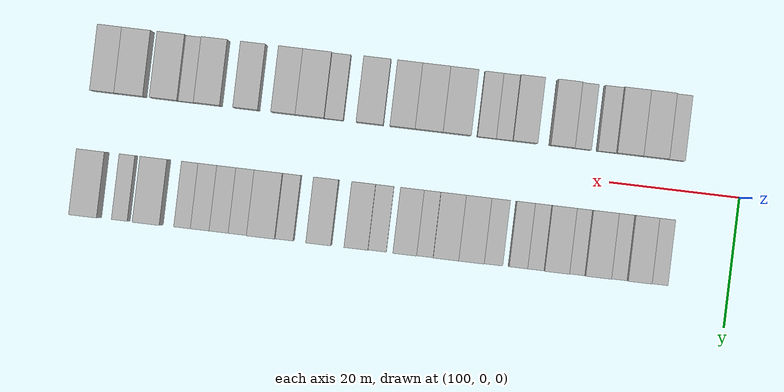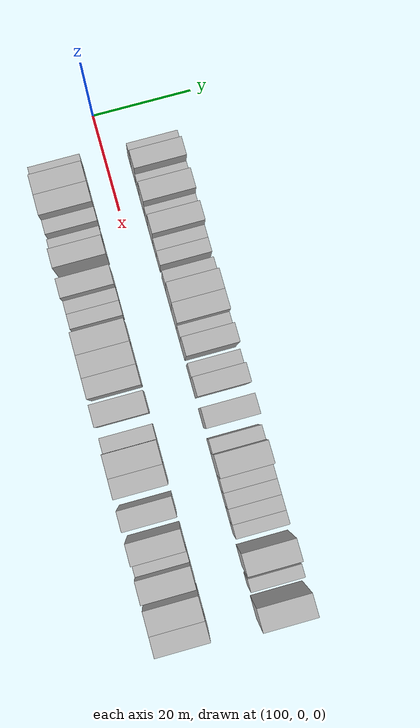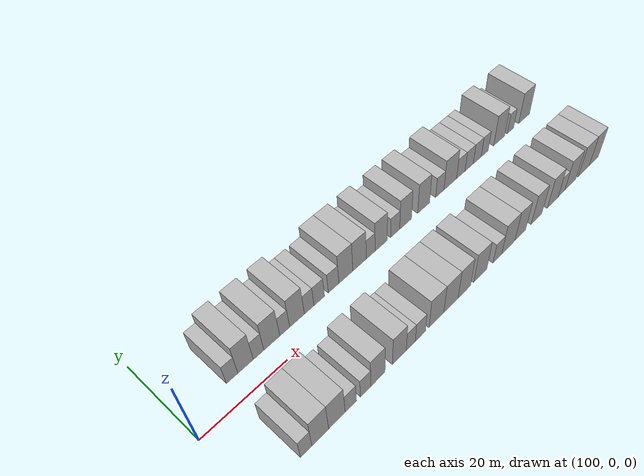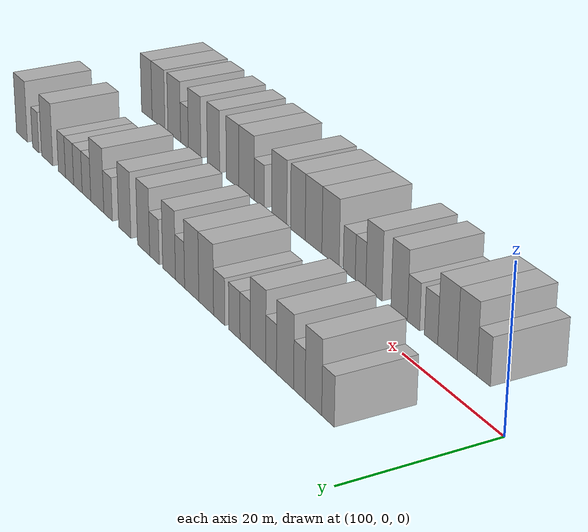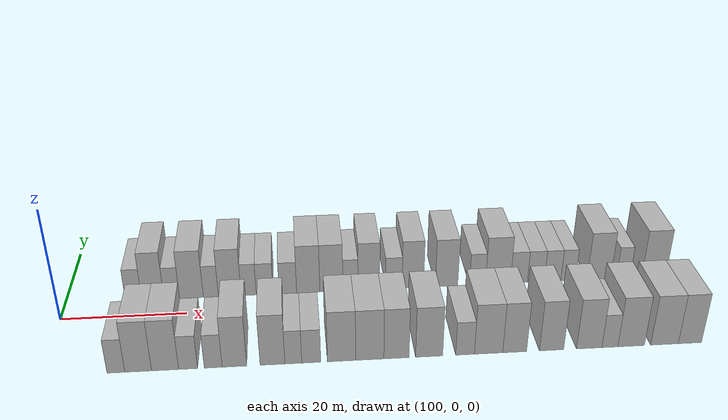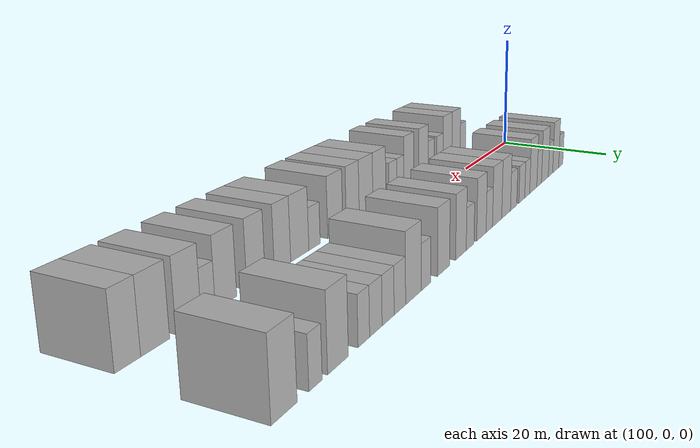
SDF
<sdf version="1.6">
 <world name="default">
  <model name="building_24">
   <static>1</static>
   <pose>111.0320 9.5000 0 0.000000 0.000000 1.570796</pose>
   <link name="link">
    <pose>0 0 3.00 0 0 0</pose>
    <collision name="collision"><geometry><box><size>10.0000 2.6387 6.0000</size></box></geometry></collision>
    <visual name="visual">
     <cast_shadows>0</cast_shadows>
     <geometry><box><size>10.0000 2.6387 6.0000</size></box></geometry>
     <material>
      <script>
       <uri>model://HANNAS_wall/materials/scripts</uri>
       <uri>model://HANNAS_wall/materials/textures</uri>
       <name>vrc/HANNAS_wall</name>
      </script>
     </material>
    </visual>
   </link>
  </model>
  <model name="building_25">
   <static>1</static>
   <pose>114.1559 9.5000 0 0.000000 0.000000 1.570796</pose>
   <link name="link">
    <pose>0 0 4.50 0 0 0</pose>
    <collision name="collision"><geometry><box><size>10.0000 3.6091 9.0000</size></box></geometry></collision>
    <visual name="visual">
     <cast_shadows>0</cast_shadows>
     <geometry><box><size>10.0000 3.6091 9.0000</size></box></geometry>
     <material>
      <script>
       <uri>model://HANNAS_wall/materials/scripts</uri>
       <uri>model://HANNAS_wall/materials/textures</uri>
       <name>vrc/HANNAS_wall</name>
      </script>
     </material>
    </visual>
   </link>
  </model>
  <model name="building_26">
   <static>1</static>
   <pose>117.2297 9.5000 0 0.000000 0.000000 1.570796</pose>
   <link name="link">
    <pose>0 0 3.00 0 0 0</pose>
    <collision name="collision"><geometry><box><size>10.0000 2.5383 6.0000</size></box></geometry></collision>
    <visual name="visual">
     <cast_shadows>0</cast_shadows>
     <geometry><box><size>10.0000 2.5383 6.0000</size></box></geometry>
     <material>
      <script>
       <uri>model://HANNAS_wall/materials/scripts</uri>
       <uri>model://HANNAS_wall/materials/textures</uri>
       <name>vrc/HANNAS_wall</name>
      </script>
     </material>
    </visual>
   </link>
  </model>
  <model name="building_27">
   <static>1</static>
   <pose>120.4501 9.5000 0 0.000000 0.000000 1.570796</pose>
   <link name="link">
    <pose>0 0 4.50 0 0 0</pose>
    <collision name="collision"><geometry><box><size>10.0000 3.9025 9.0000</size></box></geometry></collision>
    <visual name="visual">
     <cast_shadows>0</cast_shadows>
     <geometry><box><size>10.0000 3.9025 9.0000</size></box></geometry>
     <material>
      <script>
       <uri>model://HANNAS_wall/materials/scripts</uri>
       <uri>model://HANNAS_wall/materials/textures</uri>
       <name>vrc/HANNAS_wall</name>
      </script>
     </material>
    </visual>
   </link>
  </model>
  <model name="building_28">
   <static>1</static>
   <pose>123.6335 9.5000 0 0.000000 0.000000 1.570796</pose>
   <link name="link">
    <pose>0 0 3.00 0 0 0</pose>
    <collision name="collision"><geometry><box><size>10.0000 2.4644 6.0000</size></box></geometry></collision>
    <visual name="visual">
     <cast_shadows>0</cast_shadows>
     <geometry><box><size>10.0000 2.4644 6.0000</size></box></geometry>
     <material>
      <script>
       <uri>model://HANNAS_wall/materials/scripts</uri>
       <uri>model://HANNAS_wall/materials/textures</uri>
       <name>vrc/HANNAS_wall</name>
      </script>
     </material>
    </visual>
   </link>
  </model>
  <model name="building_29">
   <static>1</static>
   <pose>126.7385 9.5000 0 0.000000 0.000000 1.570796</pose>
   <link name="link">
    <pose>0 0 4.50 0 0 0</pose>
    <collision name="collision"><geometry><box><size>10.0000 3.7456 9.0000</size></box></geometry></collision>
    <visual name="visual">
     <cast_shadows>0</cast_shadows>
     <geometry><box><size>10.0000 3.7456 9.0000</size></box></geometry>
     <material>
      <script>
       <uri>model://HANNAS_wall/materials/scripts</uri>
       <uri>model://HANNAS_wall/materials/textures</uri>
       <name>vrc/HANNAS_wall</name>
      </script>
     </material>
    </visual>
   </link>
  </model>
  <model name="building_30">
   <static>1</static>
   <pose>129.8564 9.5000 0 0.000000 0.000000 1.570796</pose>
   <link name="link">
    <pose>0 0 3.00 0 0 0</pose>
    <collision name="collision"><geometry><box><size>10.0000 2.4900 6.0000</size></box></geometry></collision>
    <visual name="visual">
     <cast_shadows>0</cast_shadows>
     <geometry><box><size>10.0000 2.4900 6.0000</size></box></geometry>
     <material>
      <script>
       <uri>model://HANNAS_wall/materials/scripts</uri>
       <uri>model://HANNAS_wall/materials/textures</uri>
       <name>vrc/HANNAS_wall</name>
      </script>
     </material>
    </visual>
   </link>
  </model>
  <model name="building_31">
   <static>1</static>
   <pose>132.5036 9.5000 0 0.000000 0.000000 1.570796</pose>
   <link name="link">
    <pose>0 0 3.00 0 0 0</pose>
    <collision name="collision"><geometry><box><size>10.0000 2.8044 6.0000</size></box></geometry></collision>
    <visual name="visual">
     <cast_shadows>0</cast_shadows>
     <geometry><box><size>10.0000 2.8044 6.0000</size></box></geometry>
     <material>
      <script>
       <uri>model://HANNAS_wall/materials/scripts</uri>
       <uri>model://HANNAS_wall/materials/textures</uri>
       <name>vrc/HANNAS_wall</name>
      </script>
     </material>
    </visual>
   </link>
  </model>
  <model name="building_32">
   <static>1</static>
   <pose>136.3526 9.5000 0 0.000000 0.000000 1.570796</pose>
   <link name="link">
    <pose>0 0 3.00 0 0 0</pose>
    <collision name="collision"><geometry><box><size>10.0000 2.8936 6.0000</size></box></geometry></collision>
    <visual name="visual">
     <cast_shadows>0</cast_shadows>
     <geometry><box><size>10.0000 2.8936 6.0000</size></box></geometry>
     <material>
      <script>
       <uri>model://HANNAS_wall/materials/scripts</uri>
       <uri>model://HANNAS_wall/materials/textures</uri>
       <name>vrc/HANNAS_wall</name>
      </script>
     </material>
    </visual>
   </link>
  </model>
  <model name="building_33">
   <static>1</static>
   <pose>139.7348 9.5000 0 0.000000 0.000000 1.570796</pose>
   <link name="link">
    <pose>0 0 4.50 0 0 0</pose>
    <collision name="collision"><geometry><box><size>10.0000 3.8708 9.0000</size></box></geometry></collision>
    <visual name="visual">
     <cast_shadows>0</cast_shadows>
     <geometry><box><size>10.0000 3.8708 9.0000</size></box></geometry>
     <material>
      <script>
       <uri>model://HANNAS_wall/materials/scripts</uri>
       <uri>model://HANNAS_wall/materials/textures</uri>
       <name>vrc/HANNAS_wall</name>
      </script>
     </material>
    </visual>
   </link>
  </model>
  <model name="building_34">
   <static>1</static>
   <pose>143.5963 9.5000 0 0.000000 0.000000 1.570796</pose>
   <link name="link">
    <pose>0 0 4.50 0 0 0</pose>
    <collision name="collision"><geometry><box><size>10.0000 3.8521 9.0000</size></box></geometry></collision>
    <visual name="visual">
     <cast_shadows>0</cast_shadows>
     <geometry><box><size>10.0000 3.8521 9.0000</size></box></geometry>
     <material>
      <script>
       <uri>model://HANNAS_wall/materials/scripts</uri>
       <uri>model://HANNAS_wall/materials/textures</uri>
       <name>vrc/HANNAS_wall</name>
      </script>
     </material>
    </visual>
   </link>
  </model>
  <model name="building_35">
   <static>1</static>
   <pose>146.7884 9.5000 0 0.000000 0.000000 1.570796</pose>
   <link name="link">
    <pose>0 0 3.00 0 0 0</pose>
    <collision name="collision"><geometry><box><size>10.0000 2.5321 6.0000</size></box></geometry></collision>
    <visual name="visual">
     <cast_shadows>0</cast_shadows>
     <geometry><box><size>10.0000 2.5321 6.0000</size></box></geometry>
     <material>
      <script>
       <uri>model://HANNAS_wall/materials/scripts</uri>
       <uri>model://HANNAS_wall/materials/textures</uri>
       <name>vrc/HANNAS_wall</name>
      </script>
     </material>
    </visual>
   </link>
  </model>
  <model name="building_36">
   <static>1</static>
   <pose>149.8575 9.5000 0 0.000000 0.000000 1.570796</pose>
   <link name="link">
    <pose>0 0 4.50 0 0 0</pose>
    <collision name="collision"><geometry><box><size>10.0000 3.6062 9.0000</size></box></geometry></collision>
    <visual name="visual">
     <cast_shadows>0</cast_shadows>
     <geometry><box><size>10.0000 3.6062 9.0000</size></box></geometry>
     <material>
      <script>
       <uri>model://HANNAS_wall/materials/scripts</uri>
       <uri>model://HANNAS_wall/materials/textures</uri>
       <name>vrc/HANNAS_wall</name>
      </script>
     </material>
    </visual>
   </link>
  </model>
  <model name="building_37">
   <static>1</static>
   <pose>154.0519 9.5000 0 0.000000 0.000000 1.570796</pose>
   <link name="link">
    <pose>0 0 3.00 0 0 0</pose>
    <collision name="collision"><geometry><box><size>10.0000 2.7826 6.0000</size></box></geometry></collision>
    <visual name="visual">
     <cast_shadows>0</cast_shadows>
     <geometry><box><size>10.0000 2.7826 6.0000</size></box></geometry>
     <material>
      <script>
       <uri>model://HANNAS_wall/materials/scripts</uri>
       <uri>model://HANNAS_wall/materials/textures</uri>
       <name>vrc/HANNAS_wall</name>
      </script>
     </material>
    </visual>
   </link>
  </model>
  <model name="building_38">
   <static>1</static>
   <pose>157.2575 9.5000 0 0.000000 0.000000 1.570796</pose>
   <link name="link">
    <pose>0 0 4.50 0 0 0</pose>
    <collision name="collision"><geometry><box><size>10.0000 3.6287 9.0000</size></box></geometry></collision>
    <visual name="visual">
     <cast_shadows>0</cast_shadows>
     <geometry><box><size>10.0000 3.6287 9.0000</size></box></geometry>
     <material>
      <script>
       <uri>model://HANNAS_wall/materials/scripts</uri>
       <uri>model://HANNAS_wall/materials/textures</uri>
       <name>vrc/HANNAS_wall</name>
      </script>
     </material>
    </visual>
   </link>
  </model>
  <model name="building_39">
   <static>1</static>
   <pose>162.9676 9.5000 0 0.000000 0.000000 1.570796</pose>
   <link name="link">
    <pose>0 0 4.50 0 0 0</pose>
    <collision name="collision"><geometry><box><size>10.0000 3.7915 9.0000</size></box></geometry></collision>
    <visual name="visual">
     <cast_shadows>0</cast_shadows>
     <geometry><box><size>10.0000 3.7915 9.0000</size></box></geometry>
     <material>
      <script>
       <uri>model://HANNAS_wall/materials/scripts</uri>
       <uri>model://HANNAS_wall/materials/textures</uri>
       <name>vrc/HANNAS_wall</name>
      </script>
     </material>
    </visual>
   </link>
  </model>
  <model name="building_40">
   <static>1</static>
   <pose>168.2303 9.5000 0 0.000000 0.000000 1.570796</pose>
   <link name="link">
    <pose>0 0 3.00 0 0 0</pose>
    <collision name="collision"><geometry><box><size>10.0000 2.7340 6.0000</size></box></geometry></collision>
    <visual name="visual">
     <cast_shadows>0</cast_shadows>
     <geometry><box><size>10.0000 2.7340 6.0000</size></box></geometry>
     <material>
      <script>
       <uri>model://HANNAS_wall/materials/scripts</uri>
       <uri>model://HANNAS_wall/materials/textures</uri>
       <name>vrc/HANNAS_wall</name>
      </script>
     </material>
    </visual>
   </link>
  </model>
  <model name="building_41">
   <static>1</static>
   <pose>171.7309 9.5000 0 0.000000 0.000000 1.570796</pose>
   <link name="link">
    <pose>0 0 4.50 0 0 0</pose>
    <collision name="collision"><geometry><box><size>10.0000 4.2672 9.0000</size></box></geometry></collision>
    <visual name="visual">
     <cast_shadows>0</cast_shadows>
     <geometry><box><size>10.0000 4.2672 9.0000</size></box></geometry>
     <material>
      <script>
       <uri>model://HANNAS_wall/materials/scripts</uri>
       <uri>model://HANNAS_wall/materials/textures</uri>
       <name>vrc/HANNAS_wall</name>
      </script>
     </material>
    </visual>
   </link>
  </model>
  <model name="building_42">
   <static>1</static>
   <pose>175.3199 9.5000 0 0.000000 0.000000 1.570796</pose>
   <link name="link">
    <pose>0 0 3.00 0 0 0</pose>
    <collision name="collision"><geometry><box><size>10.0000 2.9108 6.0000</size></box></geometry></collision>
    <visual name="visual">
     <cast_shadows>0</cast_shadows>
     <geometry><box><size>10.0000 2.9108 6.0000</size></box></geometry>
     <material>
      <script>
       <uri>model://HANNAS_wall/materials/scripts</uri>
       <uri>model://HANNAS_wall/materials/textures</uri>
       <name>vrc/HANNAS_wall</name>
      </script>
     </material>
    </visual>
   </link>
  </model>
  <model name="building_43">
   <static>1</static>
   <pose>178.2325 9.5000 0 0.000000 0.000000 1.570796</pose>
   <link name="link">
    <pose>0 0 3.00 0 0 0</pose>
    <collision name="collision"><geometry><box><size>10.0000 2.9144 6.0000</size></box></geometry></collision>
    <visual name="visual">
     <cast_shadows>0</cast_shadows>
     <geometry><box><size>10.0000 2.9144 6.0000</size></box></geometry>
     <material>
      <script>
       <uri>model://HANNAS_wall/materials/scripts</uri>
       <uri>model://HANNAS_wall/materials/textures</uri>
       <name>vrc/HANNAS_wall</name>
      </script>
     </material>
    </visual>
   </link>
  </model>
  <model name="building_44">
   <static>1</static>
   <pose>181.1167 9.5000 0 0.000000 0.000000 1.570796</pose>
   <link name="link">
    <pose>0 0 3.00 0 0 0</pose>
    <collision name="collision"><geometry><box><size>10.0000 2.8540 6.0000</size></box></geometry></collision>
    <visual name="visual">
     <cast_shadows>0</cast_shadows>
     <geometry><box><size>10.0000 2.8540 6.0000</size></box></geometry>
     <material>
      <script>
       <uri>model://HANNAS_wall/materials/scripts</uri>
       <uri>model://HANNAS_wall/materials/textures</uri>
       <name>vrc/HANNAS_wall</name>
      </script>
     </material>
    </visual>
   </link>
  </model>
  <model name="building_45">
   <static>1</static>
   <pose>183.8082 9.5000 0 0.000000 0.000000 1.570796</pose>
   <link name="link">
    <pose>0 0 3.00 0 0 0</pose>
    <collision name="collision"><geometry><box><size>10.0000 2.5291 6.0000</size></box></geometry></collision>
    <visual name="visual">
     <cast_shadows>0</cast_shadows>
     <geometry><box><size>10.0000 2.5291 6.0000</size></box></geometry>
     <material>
      <script>
       <uri>model://HANNAS_wall/materials/scripts</uri>
       <uri>model://HANNAS_wall/materials/textures</uri>
       <name>vrc/HANNAS_wall</name>
      </script>
     </material>
    </visual>
   </link>
  </model>
  <model name="building_46">
   <static>1</static>
   <pose>189.1206 9.5000 0 0.000000 0.000000 1.570796</pose>
   <link name="link">
    <pose>0 0 4.50 0 0 0</pose>
    <collision name="collision"><geometry><box><size>10.0000 4.0956 9.0000</size></box></geometry></collision>
    <visual name="visual">
     <cast_shadows>0</cast_shadows>
     <geometry><box><size>10.0000 4.0956 9.0000</size></box></geometry>
     <material>
      <script>
       <uri>model://HANNAS_wall/materials/scripts</uri>
       <uri>model://HANNAS_wall/materials/textures</uri>
       <name>vrc/HANNAS_wall</name>
      </script>
     </material>
    </visual>
   </link>
  </model>
  <model name="building_47">
   <static>1</static>
   <pose>193.3702 9.5000 0 0.000000 0.000000 1.570796</pose>
   <link name="link">
    <pose>0 0 3.00 0 0 0</pose>
    <collision name="collision"><geometry><box><size>10.0000 2.4036 6.0000</size></box></geometry></collision>
    <visual name="visual">
     <cast_shadows>0</cast_shadows>
     <geometry><box><size>10.0000 2.4036 6.0000</size></box></geometry>
     <material>
      <script>
       <uri>model://HANNAS_wall/materials/scripts</uri>
       <uri>model://HANNAS_wall/materials/textures</uri>
       <name>vrc/HANNAS_wall</name>
      </script>
     </material>
    </visual>
   </link>
  </model>
  <model name="building_48">
   <static>1</static>
   <pose>198.6882 9.5000 0 0.000000 0.000000 1.570796</pose>
   <link name="link">
    <pose>0 0 4.50 0 0 0</pose>
    <collision name="collision"><geometry><box><size>10.0000 4.2324 9.0000</size></box></geometry></collision>
    <visual name="visual">
     <cast_shadows>0</cast_shadows>
     <geometry><box><size>10.0000 4.2324 9.0000</size></box></geometry>
     <material>
      <script>
       <uri>model://HANNAS_wall/materials/scripts</uri>
       <uri>model://HANNAS_wall/materials/textures</uri>
       <name>vrc/HANNAS_wall</name>
      </script>
     </material>
    </visual>
   </link>
  </model>
  <model name="building_73">
   <static>1</static>
   <pose>110.6365 -9.5000 0 0.000000 0.000000 1.570796</pose>
   <link name="link">
    <pose>0 0 3.00 0 0 0</pose>
    <collision name="collision"><geometry><box><size>10.0000 2.6120 6.0000</size></box></geometry></collision>
    <visual name="visual">
     <cast_shadows>0</cast_shadows>
     <geometry><box><size>10.0000 2.6120 6.0000</size></box></geometry>
     <material>
      <script>
       <uri>model://HANNAS_wall/materials/scripts</uri>
       <uri>model://HANNAS_wall/materials/textures</uri>
       <name>vrc/HANNAS_wall</name>
      </script>
     </material>
    </visual>
   </link>
  </model>
  <model name="building_74">
   <static>1</static>
   <pose>113.9034 -9.5000 0 0.000000 0.000000 1.570796</pose>
   <link name="link">
    <pose>0 0 4.50 0 0 0</pose>
    <collision name="collision"><geometry><box><size>10.0000 3.9217 9.0000</size></box></geometry></collision>
    <visual name="visual">
     <cast_shadows>0</cast_shadows>
     <geometry><box><size>10.0000 3.9217 9.0000</size></box></geometry>
     <material>
      <script>
       <uri>model://HANNAS_wall/materials/scripts</uri>
       <uri>model://HANNAS_wall/materials/textures</uri>
       <name>vrc/HANNAS_wall</name>
      </script>
     </material>
    </visual>
   </link>
  </model>
  <model name="building_75">
   <static>1</static>
   <pose>117.8500 -9.5000 0 0.000000 0.000000 1.570796</pose>
   <link name="link">
    <pose>0 0 4.50 0 0 0</pose>
    <collision name="collision"><geometry><box><size>10.0000 3.9715 9.0000</size></box></geometry></collision>
    <visual name="visual">
     <cast_shadows>0</cast_shadows>
     <geometry><box><size>10.0000 3.9715 9.0000</size></box></geometry>
     <material>
      <script>
       <uri>model://HANNAS_wall/materials/scripts</uri>
       <uri>model://HANNAS_wall/materials/textures</uri>
       <name>vrc/HANNAS_wall</name>
      </script>
     </material>
    </visual>
   </link>
  </model>
  <model name="building_76">
   <static>1</static>
   <pose>121.2334 -9.5000 0 0.000000 0.000000 1.570796</pose>
   <link name="link">
    <pose>0 0 3.00 0 0 0</pose>
    <collision name="collision"><geometry><box><size>10.0000 2.7953 6.0000</size></box></geometry></collision>
    <visual name="visual">
     <cast_shadows>0</cast_shadows>
     <geometry><box><size>10.0000 2.7953 6.0000</size></box></geometry>
     <material>
      <script>
       <uri>model://HANNAS_wall/materials/scripts</uri>
       <uri>model://HANNAS_wall/materials/textures</uri>
       <name>vrc/HANNAS_wall</name>
      </script>
     </material>
    </visual>
   </link>
  </model>
  <model name="building_77">
   <static>1</static>
   <pose>124.9504 -9.5000 0 0.000000 0.000000 1.570796</pose>
   <link name="link">
    <pose>0 0 3.00 0 0 0</pose>
    <collision name="collision"><geometry><box><size>10.0000 2.6387 6.0000</size></box></geometry></collision>
    <visual name="visual">
     <cast_shadows>0</cast_shadows>
     <geometry><box><size>10.0000 2.6387 6.0000</size></box></geometry>
     <material>
      <script>
       <uri>model://HANNAS_wall/materials/scripts</uri>
       <uri>model://HANNAS_wall/materials/textures</uri>
       <name>vrc/HANNAS_wall</name>
      </script>
     </material>
    </visual>
   </link>
  </model>
  <model name="building_78">
   <static>1</static>
   <pose>128.0945 -9.5000 0 0.000000 0.000000 1.570796</pose>
   <link name="link">
    <pose>0 0 4.50 0 0 0</pose>
    <collision name="collision"><geometry><box><size>10.0000 3.6496 9.0000</size></box></geometry></collision>
    <visual name="visual">
     <cast_shadows>0</cast_shadows>
     <geometry><box><size>10.0000 3.6496 9.0000</size></box></geometry>
     <material>
      <script>
       <uri>model://HANNAS_wall/materials/scripts</uri>
       <uri>model://HANNAS_wall/materials/textures</uri>
       <name>vrc/HANNAS_wall</name>
      </script>
     </material>
    </visual>
   </link>
  </model>
  <model name="building_79">
   <static>1</static>
   <pose>133.7758 -9.5000 0 0.000000 0.000000 1.570796</pose>
   <link name="link">
    <pose>0 0 4.50 0 0 0</pose>
    <collision name="collision"><geometry><box><size>10.0000 3.7130 9.0000</size></box></geometry></collision>
    <visual name="visual">
     <cast_shadows>0</cast_shadows>
     <geometry><box><size>10.0000 3.7130 9.0000</size></box></geometry>
     <material>
      <script>
       <uri>model://HANNAS_wall/materials/scripts</uri>
       <uri>model://HANNAS_wall/materials/textures</uri>
       <name>vrc/HANNAS_wall</name>
      </script>
     </material>
    </visual>
   </link>
  </model>
  <model name="building_80">
   <static>1</static>
   <pose>136.8901 -9.5000 0 0.000000 0.000000 1.570796</pose>
   <link name="link">
    <pose>0 0 3.00 0 0 0</pose>
    <collision name="collision"><geometry><box><size>10.0000 2.5155 6.0000</size></box></geometry></collision>
    <visual name="visual">
     <cast_shadows>0</cast_shadows>
     <geometry><box><size>10.0000 2.5155 6.0000</size></box></geometry>
     <material>
      <script>
       <uri>model://HANNAS_wall/materials/scripts</uri>
       <uri>model://HANNAS_wall/materials/textures</uri>
       <name>vrc/HANNAS_wall</name>
      </script>
     </material>
    </visual>
   </link>
  </model>
  <model name="building_81">
   <static>1</static>
   <pose>139.5794 -9.5000 0 0.000000 0.000000 1.570796</pose>
   <link name="link">
    <pose>0 0 3.00 0 0 0</pose>
    <collision name="collision"><geometry><box><size>10.0000 2.8631 6.0000</size></box></geometry></collision>
    <visual name="visual">
     <cast_shadows>0</cast_shadows>
     <geometry><box><size>10.0000 2.8631 6.0000</size></box></geometry>
     <material>
      <script>
       <uri>model://HANNAS_wall/materials/scripts</uri>
       <uri>model://HANNAS_wall/materials/textures</uri>
       <name>vrc/HANNAS_wall</name>
      </script>
     </material>
    </visual>
   </link>
  </model>
  <model name="building_82">
   <static>1</static>
   <pose>144.1481 -9.5000 0 0.000000 0.000000 1.570796</pose>
   <link name="link">
    <pose>0 0 4.50 0 0 0</pose>
    <collision name="collision"><geometry><box><size>10.0000 4.2744 9.0000</size></box></geometry></collision>
    <visual name="visual">
     <cast_shadows>0</cast_shadows>
     <geometry><box><size>10.0000 4.2744 9.0000</size></box></geometry>
     <material>
      <script>
       <uri>model://HANNAS_wall/materials/scripts</uri>
       <uri>model://HANNAS_wall/materials/textures</uri>
       <name>vrc/HANNAS_wall</name>
      </script>
     </material>
    </visual>
   </link>
  </model>
  <model name="building_83">
   <static>1</static>
   <pose>148.4154 -9.5000 0 0.000000 0.000000 1.570796</pose>
   <link name="link">
    <pose>0 0 4.50 0 0 0</pose>
    <collision name="collision"><geometry><box><size>10.0000 4.2601 9.0000</size></box></geometry></collision>
    <visual name="visual">
     <cast_shadows>0</cast_shadows>
     <geometry><box><size>10.0000 4.2601 9.0000</size></box></geometry>
     <material>
      <script>
       <uri>model://HANNAS_wall/materials/scripts</uri>
       <uri>model://HANNAS_wall/materials/textures</uri>
       <name>vrc/HANNAS_wall</name>
      </script>
     </material>
    </visual>
   </link>
  </model>
  <model name="building_84">
   <static>1</static>
   <pose>152.4575 -9.5000 0 0.000000 0.000000 1.570796</pose>
   <link name="link">
    <pose>0 0 4.50 0 0 0</pose>
    <collision name="collision"><geometry><box><size>10.0000 3.8242 9.0000</size></box></geometry></collision>
    <visual name="visual">
     <cast_shadows>0</cast_shadows>
     <geometry><box><size>10.0000 3.8242 9.0000</size></box></geometry>
     <material>
      <script>
       <uri>model://HANNAS_wall/materials/scripts</uri>
       <uri>model://HANNAS_wall/materials/textures</uri>
       <name>vrc/HANNAS_wall</name>
      </script>
     </material>
    </visual>
   </link>
  </model>
  <model name="building_85">
   <static>1</static>
   <pose>157.4361 -9.5000 0 0.000000 0.000000 1.570796</pose>
   <link name="link">
    <pose>0 0 4.50 0 0 0</pose>
    <collision name="collision"><geometry><box><size>10.0000 4.1329 9.0000</size></box></geometry></collision>
    <visual name="visual">
     <cast_shadows>0</cast_shadows>
     <geometry><box><size>10.0000 4.1329 9.0000</size></box></geometry>
     <material>
      <script>
       <uri>model://HANNAS_wall/materials/scripts</uri>
       <uri>model://HANNAS_wall/materials/textures</uri>
       <name>vrc/HANNAS_wall</name>
      </script>
     </material>
    </visual>
   </link>
  </model>
  <model name="building_86">
   <static>1</static>
   <pose>162.9381 -9.5000 0 0.000000 0.000000 1.570796</pose>
   <link name="link">
    <pose>0 0 3.00 0 0 0</pose>
    <collision name="collision"><geometry><box><size>10.0000 2.8709 6.0000</size></box></geometry></collision>
    <visual name="visual">
     <cast_shadows>0</cast_shadows>
     <geometry><box><size>10.0000 2.8709 6.0000</size></box></geometry>
     <material>
      <script>
       <uri>model://HANNAS_wall/materials/scripts</uri>
       <uri>model://HANNAS_wall/materials/textures</uri>
       <name>vrc/HANNAS_wall</name>
      </script>
     </material>
    </visual>
   </link>
  </model>
  <model name="building_87">
   <static>1</static>
   <pose>166.5586 -9.5000 0 0.000000 0.000000 1.570796</pose>
   <link name="link">
    <pose>0 0 4.50 0 0 0</pose>
    <collision name="collision"><geometry><box><size>10.0000 4.3702 9.0000</size></box></geometry></collision>
    <visual name="visual">
     <cast_shadows>0</cast_shadows>
     <geometry><box><size>10.0000 4.3702 9.0000</size></box></geometry>
     <material>
      <script>
       <uri>model://HANNAS_wall/materials/scripts</uri>
       <uri>model://HANNAS_wall/materials/textures</uri>
       <name>vrc/HANNAS_wall</name>
      </script>
     </material>
    </visual>
   </link>
  </model>
  <model name="building_88">
   <static>1</static>
   <pose>170.5884 -9.5000 0 0.000000 0.000000 1.570796</pose>
   <link name="link">
    <pose>0 0 4.50 0 0 0</pose>
    <collision name="collision"><geometry><box><size>10.0000 3.6893 9.0000</size></box></geometry></collision>
    <visual name="visual">
     <cast_shadows>0</cast_shadows>
     <geometry><box><size>10.0000 3.6893 9.0000</size></box></geometry>
     <material>
      <script>
       <uri>model://HANNAS_wall/materials/scripts</uri>
       <uri>model://HANNAS_wall/materials/textures</uri>
       <name>vrc/HANNAS_wall</name>
      </script>
     </material>
    </visual>
   </link>
  </model>
  <model name="building_89">
   <static>1</static>
   <pose>176.3157 -9.5000 0 0.000000 0.000000 1.570796</pose>
   <link name="link">
    <pose>0 0 4.50 0 0 0</pose>
    <collision name="collision"><geometry><box><size>10.0000 3.7654 9.0000</size></box></geometry></collision>
    <visual name="visual">
     <cast_shadows>0</cast_shadows>
     <geometry><box><size>10.0000 3.7654 9.0000</size></box></geometry>
     <material>
      <script>
       <uri>model://HANNAS_wall/materials/scripts</uri>
       <uri>model://HANNAS_wall/materials/textures</uri>
       <name>vrc/HANNAS_wall</name>
      </script>
     </material>
    </visual>
   </link>
  </model>
  <model name="building_90">
   <static>1</static>
   <pose>182.1821 -9.5000 0 0.000000 0.000000 1.570796</pose>
   <link name="link">
    <pose>0 0 4.50 0 0 0</pose>
    <collision name="collision"><geometry><box><size>10.0000 3.9674 9.0000</size></box></geometry></collision>
    <visual name="visual">
     <cast_shadows>0</cast_shadows>
     <geometry><box><size>10.0000 3.9674 9.0000</size></box></geometry>
     <material>
      <script>
       <uri>model://HANNAS_wall/materials/scripts</uri>
       <uri>model://HANNAS_wall/materials/textures</uri>
       <name>vrc/HANNAS_wall</name>
      </script>
     </material>
    </visual>
   </link>
  </model>
  <model name="building_91">
   <static>1</static>
   <pose>185.4192 -9.5000 0 0.000000 0.000000 1.570796</pose>
   <link name="link">
    <pose>0 0 3.00 0 0 0</pose>
    <collision name="collision"><geometry><box><size>10.0000 2.5067 6.0000</size></box></geometry></collision>
    <visual name="visual">
     <cast_shadows>0</cast_shadows>
     <geometry><box><size>10.0000 2.5067 6.0000</size></box></geometry>
     <material>
      <script>
       <uri>model://HANNAS_wall/materials/scripts</uri>
       <uri>model://HANNAS_wall/materials/textures</uri>
       <name>vrc/HANNAS_wall</name>
      </script>
     </material>
    </visual>
   </link>
  </model>
  <model name="building_92">
   <static>1</static>
   <pose>188.7644 -9.5000 0 0.000000 0.000000 1.570796</pose>
   <link name="link">
    <pose>0 0 4.50 0 0 0</pose>
    <collision name="collision"><geometry><box><size>10.0000 4.1838 9.0000</size></box></geometry></collision>
    <visual name="visual">
     <cast_shadows>0</cast_shadows>
     <geometry><box><size>10.0000 4.1838 9.0000</size></box></geometry>
     <material>
      <script>
       <uri>model://HANNAS_wall/materials/scripts</uri>
       <uri>model://HANNAS_wall/materials/textures</uri>
       <name>vrc/HANNAS_wall</name>
      </script>
     </material>
    </visual>
   </link>
  </model>
  <model name="building_93">
   <static>1</static>
   <pose>194.0339 -9.5000 0 0.000000 0.000000 1.570796</pose>
   <link name="link">
    <pose>0 0 4.50 0 0 0</pose>
    <collision name="collision"><geometry><box><size>10.0000 4.3553 9.0000</size></box></geometry></collision>
    <visual name="visual">
     <cast_shadows>0</cast_shadows>
     <geometry><box><size>10.0000 4.3553 9.0000</size></box></geometry>
     <material>
      <script>
       <uri>model://HANNAS_wall/materials/scripts</uri>
       <uri>model://HANNAS_wall/materials/textures</uri>
       <name>vrc/HANNAS_wall</name>
      </script>
     </material>
    </visual>
   </link>
  </model>
  <model name="building_94">
   <static>1</static>
   <pose>198.0543 -9.5000 0 0.000000 0.000000 1.570796</pose>
   <link name="link">
    <pose>0 0 4.50 0 0 0</pose>
    <collision name="collision"><geometry><box><size>10.0000 3.6854 9.0000</size></box></geometry></collision>
    <visual name="visual">
     <cast_shadows>0</cast_shadows>
     <geometry><box><size>10.0000 3.6854 9.0000</size></box></geometry>
     <material>
      <script>
       <uri>model://HANNAS_wall/materials/scripts</uri>
       <uri>model://HANNAS_wall/materials/textures</uri>
       <name>vrc/HANNAS_wall</name>
      </script>
     </material>
    </visual>
   </link>
  </model>
 </world>
</sdf>
